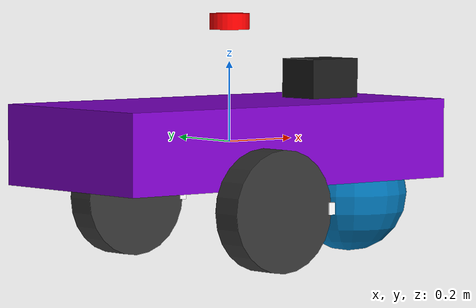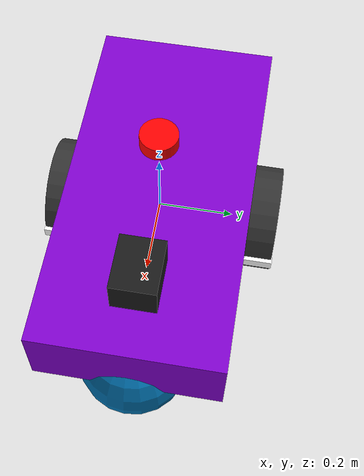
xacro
<?xml version="1.0"?>

<robot name="warehouse_robot"
       xmlns:xacro="http://www.ros.org/wiki/xacro">

    <!-- Base Link              -->

    <link name="base_link">

        <visual>
            <origin xyz="0 0 0" rpy="0 0 0"/>
            <geometry>
                <box size="1.0 0.5 0.2"/>
            </geometry>

            <material name="purple">
                <color rgba="0.5 0.0 0.8 1.0"/>
            </material>
        </visual>

        <collision>
            <origin xyz="0 0 0" rpy="0 0 0"/>
            <geometry>
                <box size="1.0 0.5 0.2"/>
            </geometry>
        </collision>

        <inertial>
            <origin xyz="0 0 0" rpy="0 0 0"/>
            <mass value="10.0"/>

            <inertia
                ixx="0.2417"
                ixy="0.0"
                ixz="0.0"
                iyy="0.8667"
                iyz="0.0"
                izz="1.0417"/>
        </inertial>

    </link>

    <!-- Camera Link            -->

    <link name="camera_link">

        <visual>
            <origin xyz="0 0 0" rpy="0 0 0"/>

            <geometry>
                <box size="0.15 0.12 0.10"/>
            </geometry>

            <material name="black">
                <color rgba="0.1 0.1 0.1 1.0"/>
            </material>
        </visual>

        <collision>
            <origin xyz="0 0 0" rpy="0 0 0"/>
            <geometry>
                <box size="0.15 0.12 0.10"/>
            </geometry>
        </collision>

        <inertial>
            <origin xyz="0 0 0" rpy="0 0 0"/>
            <mass value="0.5"/>

            <inertia
                ixx="0.0010"
                ixy="0.0"
                ixz="0.0"
                iyy="0.0014"
                iyz="0.0"
                izz="0.0015"/>
        </inertial>

    </link>

    <!-- Camera Joint -->

    <joint name="camera_joint" type="fixed">

        <parent link="base_link"/>
        <child link="camera_link"/>

        <origin xyz="0.30 0 0.15"
                rpy="0 0 0"/>

    </joint>

    <!-- Left Wheel             -->

    <link name="left_wheel_link">

        <!-- Wheel -->

        <visual>
            <origin xyz="0 0 0"
                    rpy="1.5708 0 0"/>

            <geometry>
                <cylinder radius="0.15"
                          length="0.08"/>
            </geometry>

            <material name="gray">
                <color rgba="0.2 0.2 0.2 1.0"/>
            </material>
        </visual>

        <!-- White Marker -->

        <visual>
            <origin xyz="0.15 0 0"
                    rpy="0 0 0"/>

            <geometry>
                <box size="0.02 0.085 0.03"/>
            </geometry>

            <material name="white_marker">
                <color rgba="1.0 1.0 1.0 1.0"/>
            </material>
        </visual>

        <collision>
            <origin xyz="0 0 0"
                    rpy="1.5708 0 0"/>

            <geometry>
                <cylinder radius="0.15"
                          length="0.08"/>
            </geometry>
        </collision>

        <inertial>
            <origin xyz="0 0 0"
                    rpy="0 0 0"/>

            <mass value="1.0"/>

            <inertia
                ixx="0.0062"
                ixy="0.0"
                ixz="0.0"
                iyy="0.0113"
                iyz="0.0"
                izz="0.0062"/>
        </inertial>

    </link>

    <joint name="left_wheel_joint"
           type="continuous">

        <parent link="base_link"/>
        <child link="left_wheel_link"/>

        <origin xyz="-0.1 0.29 -0.15"
                rpy="0 0 0"/>

        <axis xyz="0 1 0"/>

    </joint>

    <!-- Right Wheel            -->

    <link name="right_wheel_link">

        <visual>
            <origin xyz="0 0 0"
                    rpy="1.5708 0 0"/>

            <geometry>
                <cylinder radius="0.15"
                          length="0.08"/>
            </geometry>

            <material name="gray"/>
        </visual>

        <!-- White Marker -->

        <visual>
            <origin xyz="0.15 0 0"
                    rpy="0 0 0"/>

            <geometry>
                <box size="0.02 0.085 0.03"/>
            </geometry>

            <material name="white_marker"/>
        </visual>

        <collision>
            <origin xyz="0 0 0"
                    rpy="1.5708 0 0"/>

            <geometry>
                <cylinder radius="0.15"
                          length="0.08"/>
            </geometry>
        </collision>

        <inertial>
            <origin xyz="0 0 0"
                    rpy="0 0 0"/>

            <mass value="1.0"/>

            <inertia
                ixx="0.0062"
                ixy="0.0"
                ixz="0.0"
                iyy="0.0113"
                iyz="0.0"
                izz="0.0062"/>
        </inertial>

    </link>

    <joint name="right_wheel_joint"
           type="continuous">

        <parent link="base_link"/>
        <child link="right_wheel_link"/>

        <origin xyz="-0.1 -0.29 -0.15"
                rpy="0 0 0"/>

        <axis xyz="0 1 0"/>
    </joint>
    <link name ="caster_link">
        <visual>
            <geometry>
                <sphere radius="0.15"/>
            </geometry>
         </visual>
         <collision>
            <geometry>
                <sphere radius="0.15"/>
            </geometry>
        </collision>
        <inertial>
            <origin xyz="0 0 0" rpy="0 0 0"/>
            <mass value="0.2"/>

            <inertia
                ixx="0.0002"
                ixy="0.0"
                ixz="0.0"
                iyy="0.0002"
                iyz="0.0"
                izz="0.0002"/>
            </inertial>
    </link>
    <joint name="caster_joint" type="fixed">
        <parent link="base_link"/>
            <origin xyz="0.4 0 -0.15"/>

        <child link="caster_link"/>
    </joint>
    <link name="lidar_link">
        <visual>
            <geometry>
                <cylinder radius="0.05" length="0.04"/>
            </geometry>
             <material name="red">
                <color rgba="1 0 0 1"/>
            </material>
        </visual>
    </link>

    <joint name="lidar_joint" type="fixed">
        <parent link="base_link"/>
        <child link="lidar_link"/>
        <origin xyz="0 0 0.30" rpy="0 0 0"/>
    </joint>
    <gazebo reference="lidar_link">

        <sensor name="lidar_sensor" type="gpu_lidar">
            <update_rate>10</update_rate>
            <lidar>
            <scan>
                <horizontal>
                    <samples>360</samples>
                    <min_angle>-3.14159</min_angle>
                    <max_angle>3.14159</max_angle>
                </horizontal>
            </scan>
            <range>
                <min>0.1</min>
                <max>10.0</max>
            </range>
            </lidar>
        </sensor>

    </gazebo>

    <ros2_control name="GazeboSystem" type="system">
        <hardware>
            <plugin>gz_ros2_control/GazeboSimSystem</plugin>
        </hardware>
        <joint name="left_wheel_joint">
            <command_interface name="velocity"/>
            <state_interface name="position"/>
            <state_interface name="velocity"/>
        </joint>
         <joint name="right_wheel_joint">
            <command_interface name="velocity"/>
            <state_interface name="position"/>
            <state_interface name="velocity"/>
        </joint>
    </ros2_control>
    <gazebo>
        <plugin
            filename="gz_ros2_control-system"
            name="gz_ros2_control::GazeboSimROS2ControlPlugin">

            <parameters>$(find warehouse_robot)/config/controllers.yaml</parameters>

         </plugin>
    </gazebo>

</robot>
